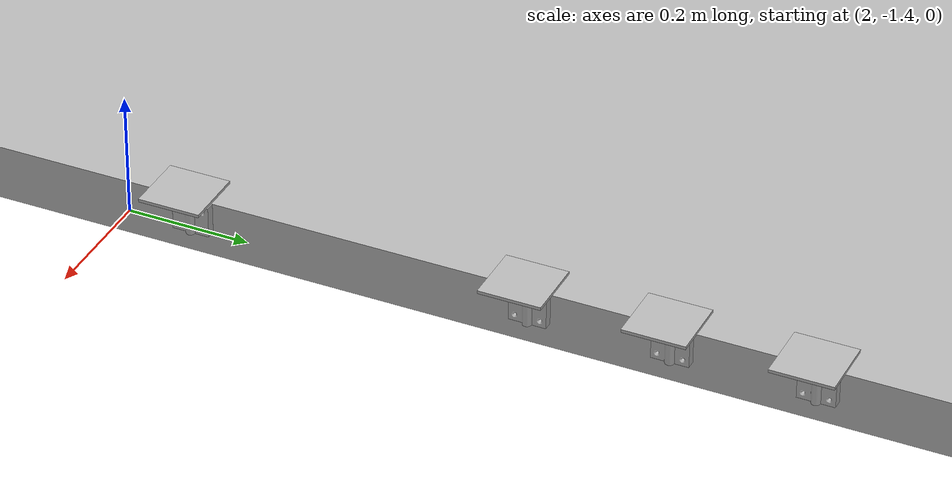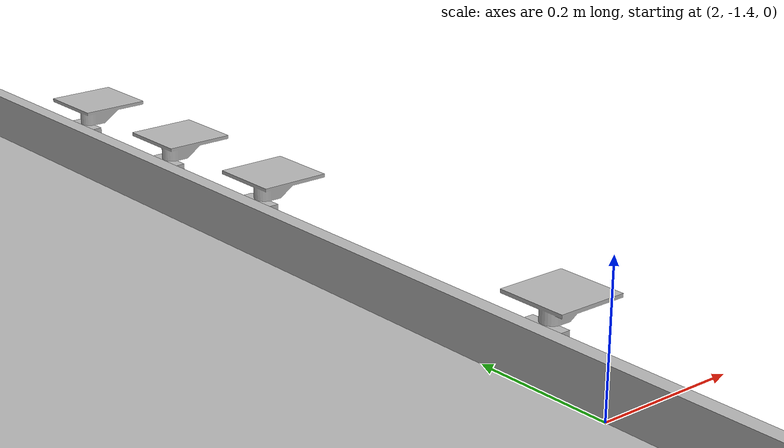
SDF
<sdf version="1.7">
 <world name="default">
  <model name="Table_2024">
   <static>1</static>
   <link name="link_0">
    <gravity>0</gravity>
    <inertial>
     <inertia>
      <ixx>0.166667</ixx>
      <ixy>0</ixy>
      <ixz>0</ixz>
      <iyy>0.166667</iyy>
      <iyz>0</iyz>
      <izz>0.166667</izz>
     </inertia>
    </inertial>
    <pose>-1 -1 0 0 -0 0</pose>
    <visual name="visual">
     <geometry><mesh><uri>model://Table2024/table2024.dae</uri><scale>1 1 1</scale></mesh></geometry>
     <material>
      <lighting>1</lighting>
      <script>
       <uri>model://Table2024/materials/scripts</uri>
       <uri>model://Table2024/materials/textures</uri>
       <name>tableMat/Diffuse</name>
       <name>Gazebo/Grey</name>
      </script>
      <shader type="pixel"/>
     </material>
    </visual>
    <collision name="collision">
     <geometry><mesh><uri>model://Table2024/table2024.dae</uri><scale>1 1 1</scale></mesh></geometry>
     <surface>
      <friction>
       <ode><mu>1</mu><mu2>1</mu2><fdir1>0 0 0</fdir1><slip1>0</slip1><slip2>0</slip2></ode>
       <torsional>
        <coefficient>1</coefficient>
        <patch_radius>0</patch_radius>
        <surface_radius>0</surface_radius>
        <use_patch_radius>1</use_patch_radius>
        <ode><slip>0</slip></ode>
       </torsional>
      </friction>
      <bounce><restitution_coefficient>0</restitution_coefficient><threshold>1e+06</threshold></bounce>
      <contact>
       <collide_without_contact>0</collide_without_contact>
       <collide_without_contact_bitmask>1</collide_without_contact_bitmask>
       <collide_bitmask>1</collide_bitmask>
       <ode>
        <soft_cfm>0</soft_cfm>
        <soft_erp>0.2</soft_erp>
        <kp>1e+13</kp>
        <kd>1</kd>
        <max_vel>0.01</max_vel>
        <min_depth>0</min_depth>
       </ode>
       <bullet>
        <split_impulse>1</split_impulse>
        <split_impulse_penetration_threshold>-0.01</split_impulse_penetration_threshold>
        <soft_cfm>0</soft_cfm>
        <soft_erp>0.2</soft_erp>
        <kp>1e+13</kp>
        <kd>1</kd>
       </bullet>
      </contact>
     </surface>
    </collision>
   </link>
   <static>0</static>
   <pose>1 1 0 0 -0 0</pose>
  </model>
  <model name="SolarPanel_0_clone_3">
   <link name="solar_panel_base_link">
    <gravity>0</gravity>
    <visual name="visual">
     <geometry>
      <mesh><uri>/home/vincent/.gazebo/models/SolarPanel/supportSolarPanel.dae</uri><scale>1 1 1</scale></mesh>
     </geometry>
    </visual>
    <inertial>
     <inertia><ixx>1</ixx><ixy>0</ixy><ixz>0</ixz><iyy>1</iyy><iyz>0</iyz><izz>1</izz></inertia>
     <mass>1</mass>
    </inertial>
   </link>
   <link name="solar_panel">
    <inertial>
     <inertia><ixx>0.01</ixx><ixy>0</ixy><ixz>0</ixz><iyy>0.01</iyy><iyz>0</iyz><izz>0.01</izz></inertia>
     <mass>1</mass>
    </inertial>
    <pose>0 0 0.055 0 -0 3.14159</pose>
    <visual name="visual">
     <geometry>
      <mesh><uri>/home/vincent/.gazebo/models/SolarPanel/solarPanelTextured.dae</uri><scale>1 1 1</scale></mesh>
     </geometry>
     <material>
      <lighting>1</lighting>
      <script>
       <uri>/home/vincent/.gazebo/models/SolarPanel/materials/scripts</uri>
       <uri>/home/vincent/.gazebo/models/SolarPanel/materials/textures</uri>
       <name>solarPanelMat/Diffuse</name>
       <name>Gazebo/Grey</name>
      </script>
      <shader type="pixel"/>
     </material>
    </visual>
    <collision name="collision">
     <geometry>
      <mesh><uri>/home/vincent/.gazebo/models/SolarPanel/solarPanelTextured.dae</uri><scale>1 1 1</scale></mesh>
     </geometry>
     <surface>
      <friction>
       <ode><mu>1</mu><mu2>1</mu2><fdir1>0 0 0</fdir1><slip1>0</slip1><slip2>0</slip2></ode>
       <torsional>
        <coefficient>1</coefficient>
        <patch_radius>0</patch_radius>
        <surface_radius>0</surface_radius>
        <use_patch_radius>1</use_patch_radius>
        <ode><slip>0</slip></ode>
       </torsional>
      </friction>
      <bounce><restitution_coefficient>0</restitution_coefficient><threshold>1e+06</threshold></bounce>
      <contact>
       <collide_without_contact>0</collide_without_contact>
       <collide_without_contact_bitmask>1</collide_without_contact_bitmask>
       <collide_bitmask>1</collide_bitmask>
       <ode>
        <soft_cfm>0</soft_cfm>
        <soft_erp>0.2</soft_erp>
        <kp>1e+13</kp>
        <kd>1</kd>
        <max_vel>0.01</max_vel>
        <min_depth>0.01</min_depth>
       </ode>
       <bullet>
        <split_impulse>1</split_impulse>
        <split_impulse_penetration_threshold>-0.01</split_impulse_penetration_threshold>
        <soft_cfm>0</soft_cfm>
        <soft_erp>0.2</soft_erp>
        <kp>1e+13</kp>
        <kd>1</kd>
       </bullet>
      </contact>
     </surface>
    </collision>
   </link>
   <joint name="revolution" type="revolute">
    <parent>solar_panel_base_link</parent>
    <child>solar_panel</child>
    <axis>
     <xyz>0 0 1</xyz>
     <dynamics>
      <friction>0.005</friction>
      <damping>0.001</damping>
      <spring_reference>0</spring_reference>
      <spring_stiffness>0</spring_stiffness>
     </dynamics>
     <limit><lower>-1e+16</lower><upper>1e+16</upper></limit>
    </axis>
   </joint>
   <joint name="fix" type="fixed"><parent>world</parent><child>solar_panel_base_link</child></joint>
   <pose>2.03667 -1.2754 0.044632 0 -0 1.5708</pose>
  </model>
  <model name="SolarPanel_0_clone_4">
   <link name="solar_panel_base_link">
    <gravity>0</gravity>
    <visual name="visual">
     <geometry>
      <mesh><uri>/home/vincent/.gazebo/models/SolarPanel/supportSolarPanel.dae</uri><scale>1 1 1</scale></mesh>
     </geometry>
    </visual>
    <inertial>
     <inertia><ixx>1</ixx><ixy>0</ixy><ixz>0</ixz><iyy>1</iyy><iyz>0</iyz><izz>1</izz></inertia>
     <mass>1</mass>
    </inertial>
   </link>
   <link name="solar_panel">
    <inertial>
     <inertia><ixx>0.01</ixx><ixy>0</ixy><ixz>0</ixz><iyy>0.01</iyy><iyz>0</iyz><izz>0.01</izz></inertia>
     <mass>1</mass>
    </inertial>
    <pose>0 0 0.055 0 -0 3.14159</pose>
    <visual name="visual">
     <geometry>
      <mesh><uri>/home/vincent/.gazebo/models/SolarPanel/solarPanelTextured.dae</uri><scale>1 1 1</scale></mesh>
     </geometry>
     <material>
      <lighting>1</lighting>
      <script>
       <uri>/home/vincent/.gazebo/models/SolarPanel/materials/scripts</uri>
       <uri>/home/vincent/.gazebo/models/SolarPanel/materials/textures</uri>
       <name>solarPanelMat/Diffuse</name>
       <name>Gazebo/Grey</name>
      </script>
      <shader type="pixel"/>
     </material>
    </visual>
    <collision name="collision">
     <geometry>
      <mesh><uri>/home/vincent/.gazebo/models/SolarPanel/solarPanelTextured.dae</uri><scale>1 1 1</scale></mesh>
     </geometry>
     <surface>
      <friction>
       <ode><mu>1</mu><mu2>1</mu2><fdir1>0 0 0</fdir1><slip1>0</slip1><slip2>0</slip2></ode>
       <torsional>
        <coefficient>1</coefficient>
        <patch_radius>0</patch_radius>
        <surface_radius>0</surface_radius>
        <use_patch_radius>1</use_patch_radius>
        <ode><slip>0</slip></ode>
       </torsional>
      </friction>
      <bounce><restitution_coefficient>0</restitution_coefficient><threshold>1e+06</threshold></bounce>
      <contact>
       <collide_without_contact>0</collide_without_contact>
       <collide_without_contact_bitmask>1</collide_without_contact_bitmask>
       <collide_bitmask>1</collide_bitmask>
       <ode>
        <soft_cfm>0</soft_cfm>
        <soft_erp>0.2</soft_erp>
        <kp>1e+13</kp>
        <kd>1</kd>
        <max_vel>0.01</max_vel>
        <min_depth>0.01</min_depth>
       </ode>
       <bullet>
        <split_impulse>1</split_impulse>
        <split_impulse_penetration_threshold>-0.01</split_impulse_penetration_threshold>
        <soft_cfm>0</soft_cfm>
        <soft_erp>0.2</soft_erp>
        <kp>1e+13</kp>
        <kd>1</kd>
       </bullet>
      </contact>
     </surface>
    </collision>
   </link>
   <joint name="revolution" type="revolute">
    <parent>solar_panel_base_link</parent>
    <child>solar_panel</child>
    <axis>
     <xyz>0 0 1</xyz>
     <dynamics>
      <friction>0.005</friction>
      <damping>0.001</damping>
      <spring_reference>0</spring_reference>
      <spring_stiffness>0</spring_stiffness>
     </dynamics>
     <limit><lower>-1e+16</lower><upper>1e+16</upper></limit>
    </axis>
   </joint>
   <joint name="fix" type="fixed"><parent>world</parent><child>solar_panel_base_link</child></joint>
   <pose>2.03655 -0.724107 0.044632 0 -0 1.5708</pose>
  </model>
  <model name="SolarPanel_0_clone_5">
   <link name="solar_panel_base_link">
    <gravity>0</gravity>
    <visual name="visual">
     <geometry>
      <mesh><uri>/home/vincent/.gazebo/models/SolarPanel/supportSolarPanel.dae</uri><scale>1 1 1</scale></mesh>
     </geometry>
    </visual>
    <inertial>
     <inertia><ixx>1</ixx><ixy>0</ixy><ixz>0</ixz><iyy>1</iyy><iyz>0</iyz><izz>1</izz></inertia>
     <mass>1</mass>
    </inertial>
   </link>
   <link name="solar_panel">
    <inertial>
     <inertia><ixx>0.01</ixx><ixy>0</ixy><ixz>0</ixz><iyy>0.01</iyy><iyz>0</iyz><izz>0.01</izz></inertia>
     <mass>1</mass>
    </inertial>
    <pose>0 0 0.055 0 -0 3.14159</pose>
    <visual name="visual">
     <geometry>
      <mesh><uri>/home/vincent/.gazebo/models/SolarPanel/solarPanelTextured.dae</uri><scale>1 1 1</scale></mesh>
     </geometry>
     <material>
      <lighting>1</lighting>
      <script>
       <uri>/home/vincent/.gazebo/models/SolarPanel/materials/scripts</uri>
       <uri>/home/vincent/.gazebo/models/SolarPanel/materials/textures</uri>
       <name>solarPanelMat/Diffuse</name>
       <name>Gazebo/Grey</name>
      </script>
      <shader type="pixel"/>
     </material>
    </visual>
    <collision name="collision">
     <geometry>
      <mesh><uri>/home/vincent/.gazebo/models/SolarPanel/solarPanelTextured.dae</uri><scale>1 1 1</scale></mesh>
     </geometry>
     <surface>
      <friction>
       <ode><mu>1</mu><mu2>1</mu2><fdir1>0 0 0</fdir1><slip1>0</slip1><slip2>0</slip2></ode>
       <torsional>
        <coefficient>1</coefficient>
        <patch_radius>0</patch_radius>
        <surface_radius>0</surface_radius>
        <use_patch_radius>1</use_patch_radius>
        <ode><slip>0</slip></ode>
       </torsional>
      </friction>
      <bounce><restitution_coefficient>0</restitution_coefficient><threshold>1e+06</threshold></bounce>
      <contact>
       <collide_without_contact>0</collide_without_contact>
       <collide_without_contact_bitmask>1</collide_without_contact_bitmask>
       <collide_bitmask>1</collide_bitmask>
       <ode>
        <soft_cfm>0</soft_cfm>
        <soft_erp>0.2</soft_erp>
        <kp>1e+13</kp>
        <kd>1</kd>
        <max_vel>0.01</max_vel>
        <min_depth>0.01</min_depth>
       </ode>
       <bullet>
        <split_impulse>1</split_impulse>
        <split_impulse_penetration_threshold>-0.01</split_impulse_penetration_threshold>
        <soft_cfm>0</soft_cfm>
        <soft_erp>0.2</soft_erp>
        <kp>1e+13</kp>
        <kd>1</kd>
       </bullet>
      </contact>
     </surface>
    </collision>
   </link>
   <joint name="revolution" type="revolute">
    <parent>solar_panel_base_link</parent>
    <child>solar_panel</child>
    <axis>
     <xyz>0 0 1</xyz>
     <dynamics>
      <friction>0.005</friction>
      <damping>0.001</damping>
      <spring_reference>0</spring_reference>
      <spring_stiffness>0</spring_stiffness>
     </dynamics>
     <limit><lower>-1e+16</lower><upper>1e+16</upper></limit>
    </axis>
   </joint>
   <joint name="fix" type="fixed"><parent>world</parent><child>solar_panel_base_link</child></joint>
   <pose>2.03637 -0.499864 0.044632 0 -0 1.5708</pose>
  </model>
  <model name="SolarPanel_0_clone_6">
   <link name="solar_panel_base_link">
    <gravity>0</gravity>
    <visual name="visual">
     <geometry>
      <mesh><uri>/home/vincent/.gazebo/models/SolarPanel/supportSolarPanel.dae</uri><scale>1 1 1</scale></mesh>
     </geometry>
    </visual>
    <inertial>
     <inertia><ixx>1</ixx><ixy>0</ixy><ixz>0</ixz><iyy>1</iyy><iyz>0</iyz><izz>1</izz></inertia>
     <mass>1</mass>
    </inertial>
   </link>
   <link name="solar_panel">
    <inertial>
     <inertia><ixx>0.01</ixx><ixy>0</ixy><ixz>0</ixz><iyy>0.01</iyy><iyz>0</iyz><izz>0.01</izz></inertia>
     <mass>1</mass>
    </inertial>
    <pose>0 0 0.055 0 -0 3.14159</pose>
    <visual name="visual">
     <geometry>
      <mesh><uri>/home/vincent/.gazebo/models/SolarPanel/solarPanelTextured.dae</uri><scale>1 1 1</scale></mesh>
     </geometry>
     <material>
      <lighting>1</lighting>
      <script>
       <uri>/home/vincent/.gazebo/models/SolarPanel/materials/scripts</uri>
       <uri>/home/vincent/.gazebo/models/SolarPanel/materials/textures</uri>
       <name>solarPanelMat/Diffuse</name>
       <name>Gazebo/Grey</name>
      </script>
      <shader type="pixel"/>
     </material>
    </visual>
    <collision name="collision">
     <geometry>
      <mesh><uri>/home/vincent/.gazebo/models/SolarPanel/solarPanelTextured.dae</uri><scale>1 1 1</scale></mesh>
     </geometry>
     <surface>
      <friction>
       <ode><mu>1</mu><mu2>1</mu2><fdir1>0 0 0</fdir1><slip1>0</slip1><slip2>0</slip2></ode>
       <torsional>
        <coefficient>1</coefficient>
        <patch_radius>0</patch_radius>
        <surface_radius>0</surface_radius>
        <use_patch_radius>1</use_patch_radius>
        <ode><slip>0</slip></ode>
       </torsional>
      </friction>
      <bounce><restitution_coefficient>0</restitution_coefficient><threshold>1e+06</threshold></bounce>
      <contact>
       <collide_without_contact>0</collide_without_contact>
       <collide_without_contact_bitmask>1</collide_without_contact_bitmask>
       <collide_bitmask>1</collide_bitmask>
       <ode>
        <soft_cfm>0</soft_cfm>
        <soft_erp>0.2</soft_erp>
        <kp>1e+13</kp>
        <kd>1</kd>
        <max_vel>0.01</max_vel>
        <min_depth>0.01</min_depth>
       </ode>
       <bullet>
        <split_impulse>1</split_impulse>
        <split_impulse_penetration_threshold>-0.01</split_impulse_penetration_threshold>
        <soft_cfm>0</soft_cfm>
        <soft_erp>0.2</soft_erp>
        <kp>1e+13</kp>
        <kd>1</kd>
       </bullet>
      </contact>
     </surface>
    </collision>
   </link>
   <joint name="revolution" type="revolute">
    <parent>solar_panel_base_link</parent>
    <child>solar_panel</child>
    <axis>
     <xyz>0 0 1</xyz>
     <dynamics>
      <friction>0.005</friction>
      <damping>0.001</damping>
      <spring_reference>0</spring_reference>
      <spring_stiffness>0</spring_stiffness>
     </dynamics>
     <limit><lower>-1e+16</lower><upper>1e+16</upper></limit>
    </axis>
   </joint>
   <joint name="fix" type="fixed"><parent>world</parent><child>solar_panel_base_link</child></joint>
   <pose>2.03679 -0.274994 0.044632 0 -0 1.5708</pose>
  </model>
 </world>
</sdf>
